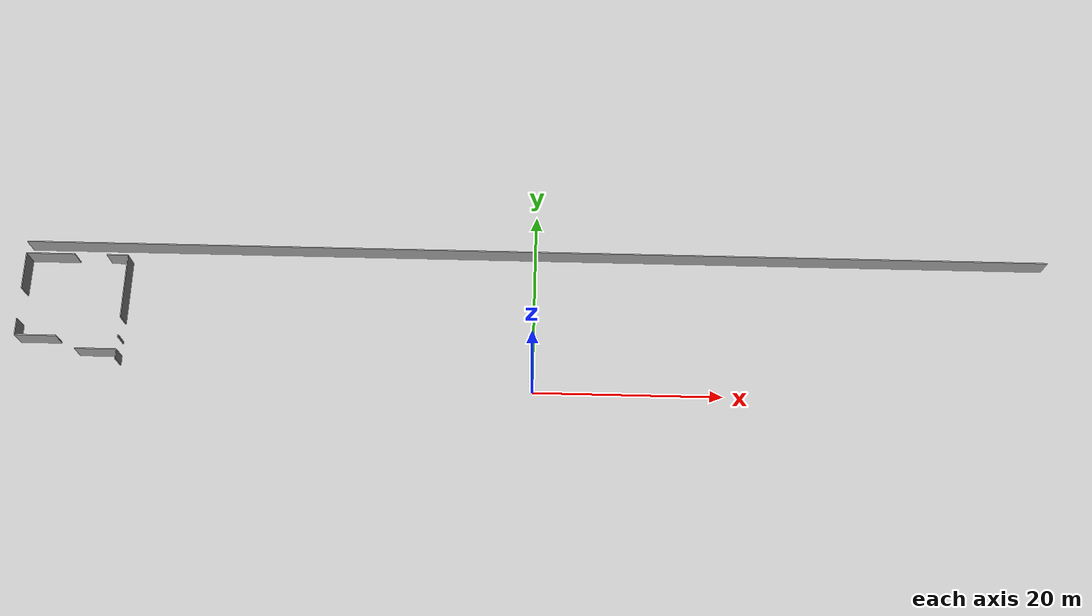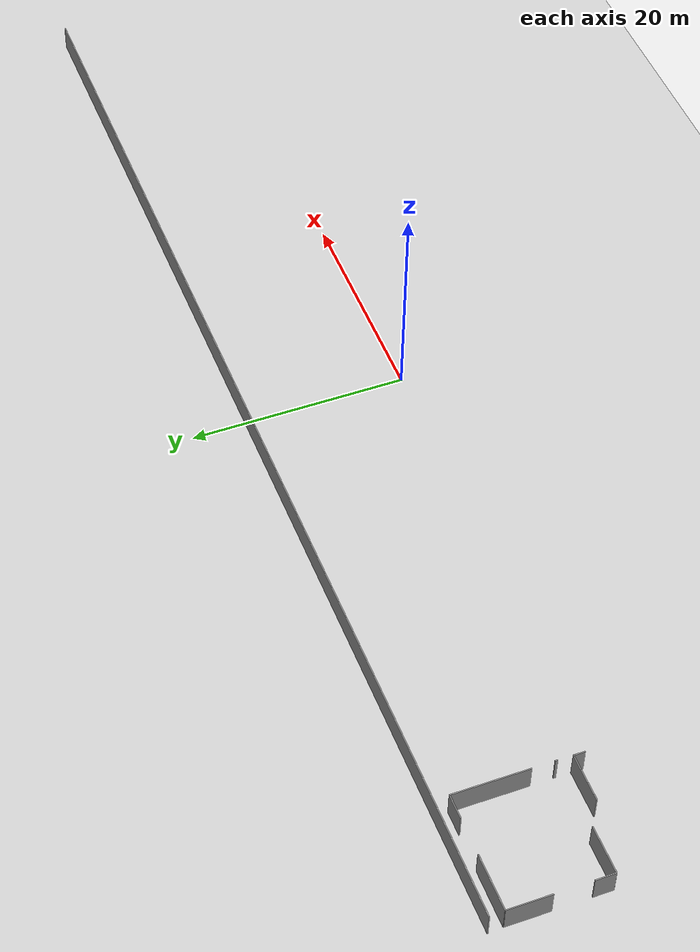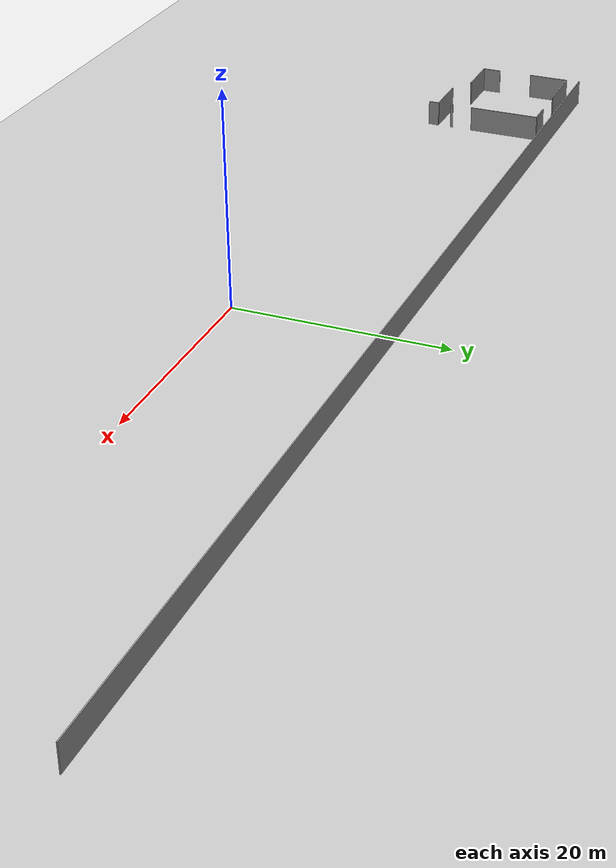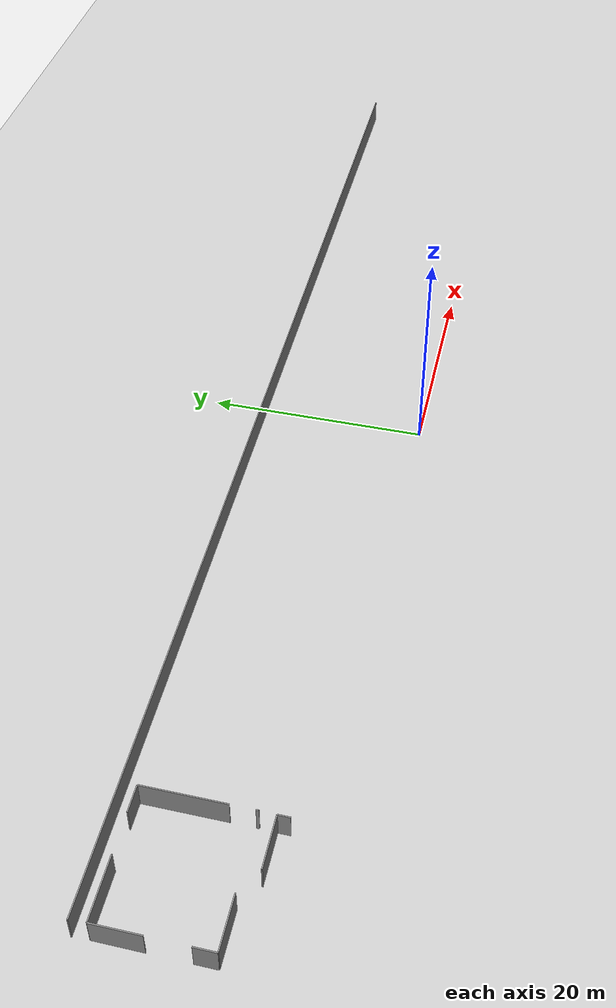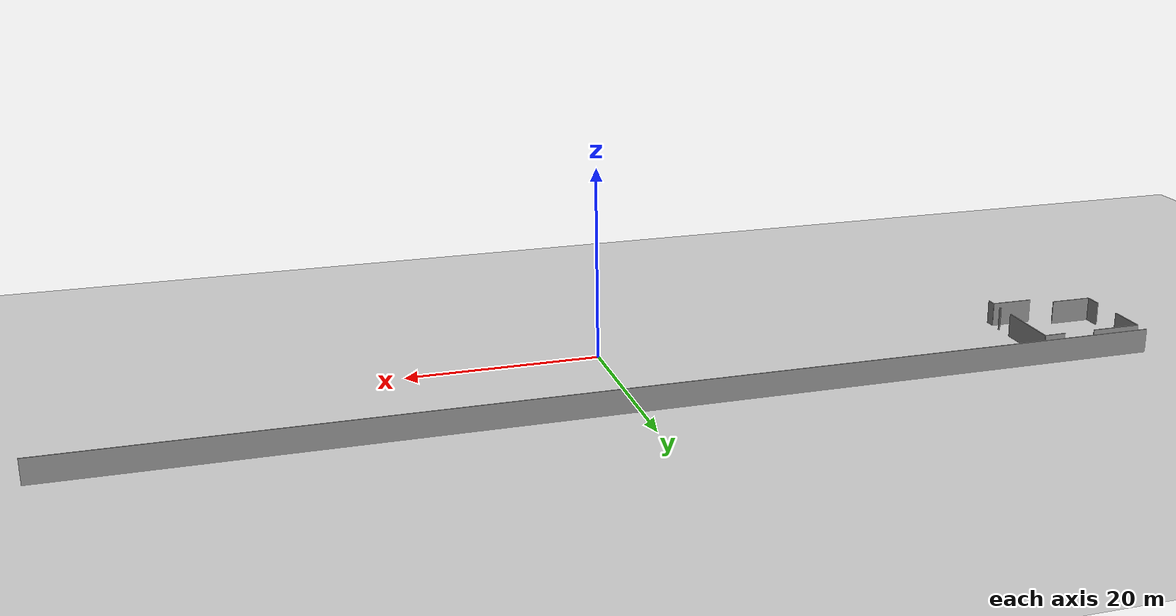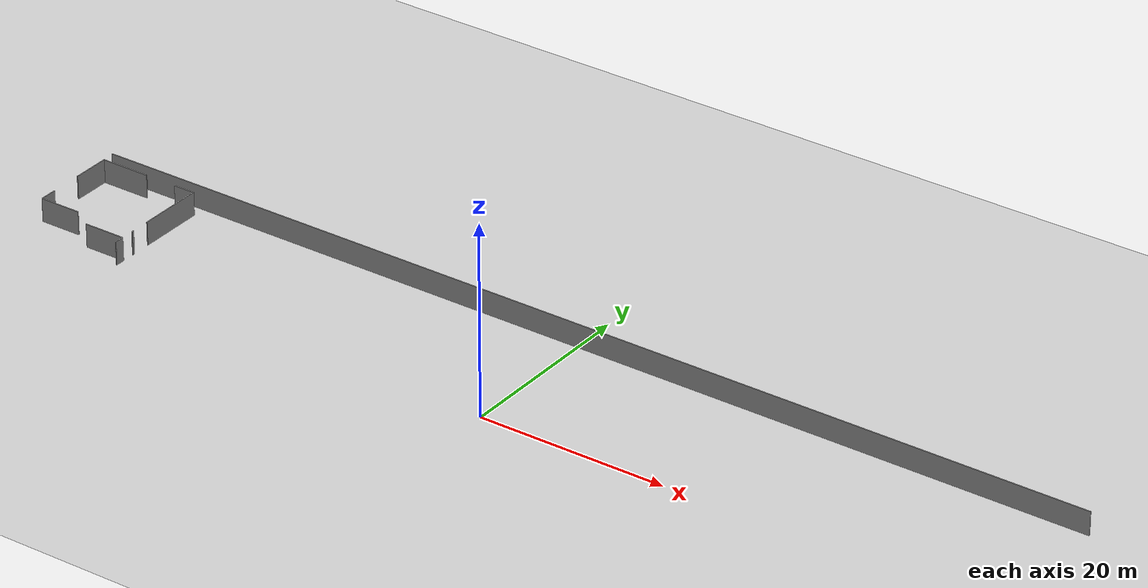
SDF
<sdf version="1.6">
 <world name="default">
  <model name="ground_plane">
   <static>1</static>
   <link name="link">
    <collision name="collision">
     <geometry><plane><normal>0 0 1</normal><size>100 100</size></plane></geometry>
     <surface><friction><ode><mu>100</mu><mu2>50</mu2></ode></friction></surface>
    </collision>
    <visual name="visual">
     <cast_shadows>0</cast_shadows>
     <geometry><plane><normal>0 0 1</normal><size>100 100</size></plane></geometry>
     <material>
      <script><uri>file://media/materials/scripts/gazebo.material</uri><name>Gazebo/Grey</name></script>
     </material>
    </visual>
   </link>
  </model>
  <model name="50056457">
   <static>1</static>
   <link name="Wall_1">
    <collision name="Wall_1_Collision">
     <geometry><box><size>4.40476694646 0.1 2.5</size></box></geometry>
     <pose>2.20238347323 0 1.25 0 0 0</pose>
    </collision>
    <visual name="Wall_1_Visual">
     <pose>2.20238347323 0 1.25 0 0 0</pose>
     <geometry><box><size>4.40476694646 0.1 2.5</size></box></geometry>
     <material>
      <script><uri>file://media/materials/scripts/gazebo.material</uri><name>Gazebo/Grey</name></script>
      <ambient>1 1 1 1</ambient>
     </material>
    </visual>
    <pose>4.51945147929 -10.6294097219 0 0 0 3.14159265359</pose>
   </link>
   <link name="Wall_2">
    <collision name="Wall_2_Collision">
     <geometry><box><size>1.82783767988 0.1 2.5</size></box></geometry>
     <pose>0.913918839941 0 1.25 0 0 0</pose>
    </collision>
    <visual name="Wall_2_Visual">
     <pose>0.913918839941 0 1.25 0 0 0</pose>
     <geometry><box><size>1.82783767988 0.1 2.5</size></box></geometry>
     <material>
      <script><uri>file://media/materials/scripts/gazebo.material</uri><name>Gazebo/Grey</name></script>
      <ambient>1 1 1 1</ambient>
     </material>
    </visual>
    <pose>0.114684532834 -10.6294097219 0 0 0 1.57079632679</pose>
   </link>
   <link name="Wall_3">
    <collision name="Wall_3_Collision">
     <geometry><box><size>4.02632492822 0.1 2.5</size></box></geometry>
     <pose>2.01316246411 0 1.25 0 0 0</pose>
    </collision>
    <visual name="Wall_3_Visual">
     <pose>2.01316246411 0 1.25 0 0 0</pose>
     <geometry><box><size>4.02632492822 0.1 2.5</size></box></geometry>
     <material>
      <script><uri>file://media/materials/scripts/gazebo.material</uri><name>Gazebo/Grey</name></script>
      <ambient>1 1 1 1</ambient>
     </material>
    </visual>
    <pose>0.114684532834 -5.38221119233 0 0 0 1.57079632679</pose>
   </link>
   <link name="Wall_4">
    <collision name="Wall_4_Collision">
     <geometry><box><size>5.22212716939 0.1 2.5</size></box></geometry>
     <pose>2.6110635847 0 1.25 0 0 0</pose>
    </collision>
    <visual name="Wall_4_Visual">
     <pose>2.6110635847 0 1.25 0 0 0</pose>
     <geometry><box><size>5.22212716939 0.1 2.5</size></box></geometry>
     <material>
      <script><uri>file://media/materials/scripts/gazebo.material</uri><name>Gazebo/Grey</name></script>
      <ambient>1 1 1 1</ambient>
     </material>
    </visual>
    <pose>0.114684532834 -1.35588626411 0 0 0 0.0</pose>
   </link>
   <link name="Wall_5">
    <collision name="Wall_5_Collision">
     <geometry><box><size>2.28335719065 0.1 2.5</size></box></geometry>
     <pose>1.14167859533 0 1.25 0 0 0</pose>
    </collision>
    <visual name="Wall_5_Visual">
     <pose>1.14167859533 0 1.25 0 0 0</pose>
     <geometry><box><size>2.28335719065 0.1 2.5</size></box></geometry>
     <material>
      <script><uri>file://media/materials/scripts/gazebo.material</uri><name>Gazebo/Grey</name></script>
      <ambient>1 1 1 1</ambient>
     </material>
    </visual>
    <pose>8.75092111839 -1.35588626411 0 0 0 0.0</pose>
   </link>
   <link name="Wall_6">
    <collision name="Wall_6_Collision">
     <geometry><box><size>7.03251653778 0.1 2.5</size></box></geometry>
     <pose>3.51625826889 0 1.25 0 0 0</pose>
    </collision>
    <visual name="Wall_6_Visual">
     <pose>3.51625826889 0 1.25 0 0 0</pose>
     <geometry><box><size>7.03251653778 0.1 2.5</size></box></geometry>
     <material>
      <script><uri>file://media/materials/scripts/gazebo.material</uri><name>Gazebo/Grey</name></script>
      <ambient>1 1 1 1</ambient>
     </material>
    </visual>
    <pose>11.034278309 -1.35588626411 0 0 0 -1.57079632679</pose>
   </link>
   <link name="Wall_7">
    <collision name="Wall_7_Collision">
     <geometry><box><size>0.24165532 0.1 2.5</size></box></geometry>
     <pose>0.12082766 0 1.25 0 0 0</pose>
    </collision>
    <visual name="Wall_7_Visual">
     <pose>0.12082766 0 1.25 0 0 0</pose>
     <geometry><box><size>0.24165532 0.1 2.5</size></box></geometry>
     <material>
      <script><uri>file://media/materials/scripts/gazebo.material</uri><name>Gazebo/Grey</name></script>
      <ambient>1 1 1 1</ambient>
     </material>
    </visual>
    <pose>11.034278309 -10.3880131794 0 0 0 -1.5245136129</pose>
   </link>
   <link name="Wall_30">
    <collision name="Wall_30_Collision">
     <geometry><box><size>4.39968491399 0.1 2.5</size></box></geometry>
     <pose>2.19984245699 0 1.25 0 0 0</pose>
    </collision>
    <visual name="Wall_30_Visual">
     <pose>2.19984245699 0 1.25 0 0 0</pose>
     <geometry><box><size>4.39968491399 0.1 2.5</size></box></geometry>
     <material>
      <script><uri>file://media/materials/scripts/gazebo.material</uri><name>Gazebo/Grey</name></script>
      <ambient>1 1 1 1</ambient>
     </material>
    </visual>
    <pose>6.61240185325 -11.9712356962 0 0 0 0.0</pose>
   </link>
   <link name="Wall_31">
    <collision name="Wall_31_Collision">
     <geometry><box><size>1.03300780092 0.1 2.5</size></box></geometry>
     <pose>0.51650390046 0 1.25 0 0 0</pose>
    </collision>
    <visual name="Wall_31_Visual">
     <pose>0.51650390046 0 1.25 0 0 0</pose>
     <geometry><box><size>1.03300780092 0.1 2.5</size></box></geometry>
     <material>
      <script><uri>file://media/materials/scripts/gazebo.material</uri><name>Gazebo/Grey</name></script>
      <ambient>1 1 1 1</ambient>
     </material>
    </visual>
    <pose>11.0120867672 -11.9712356962 0 0 0 -1.57079632679</pose>
   </link>
   <link name="Wall_305">
    <collision name="Wall_305_Collision">
     <geometry><box><size>109.631467945 0.1 2.5</size></box></geometry>
     <pose>54.8157339725 0 1.25 0 0 0</pose>
    </collision>
    <visual name="Wall_305_Visual">
     <pose>54.8157339725 0 1.25 0 0 0</pose>
     <geometry><box><size>109.631467945 0.1 2.5</size></box></geometry>
     <material>
      <script><uri>file://media/materials/scripts/gazebo.material</uri><name>Gazebo/Grey</name></script>
      <ambient>1 1 1 1</ambient>
     </material>
    </visual>
   </link>
   <pose>-54.8 15.0363365322 0 0 0 0</pose>
  </model>
 </world>
</sdf>
